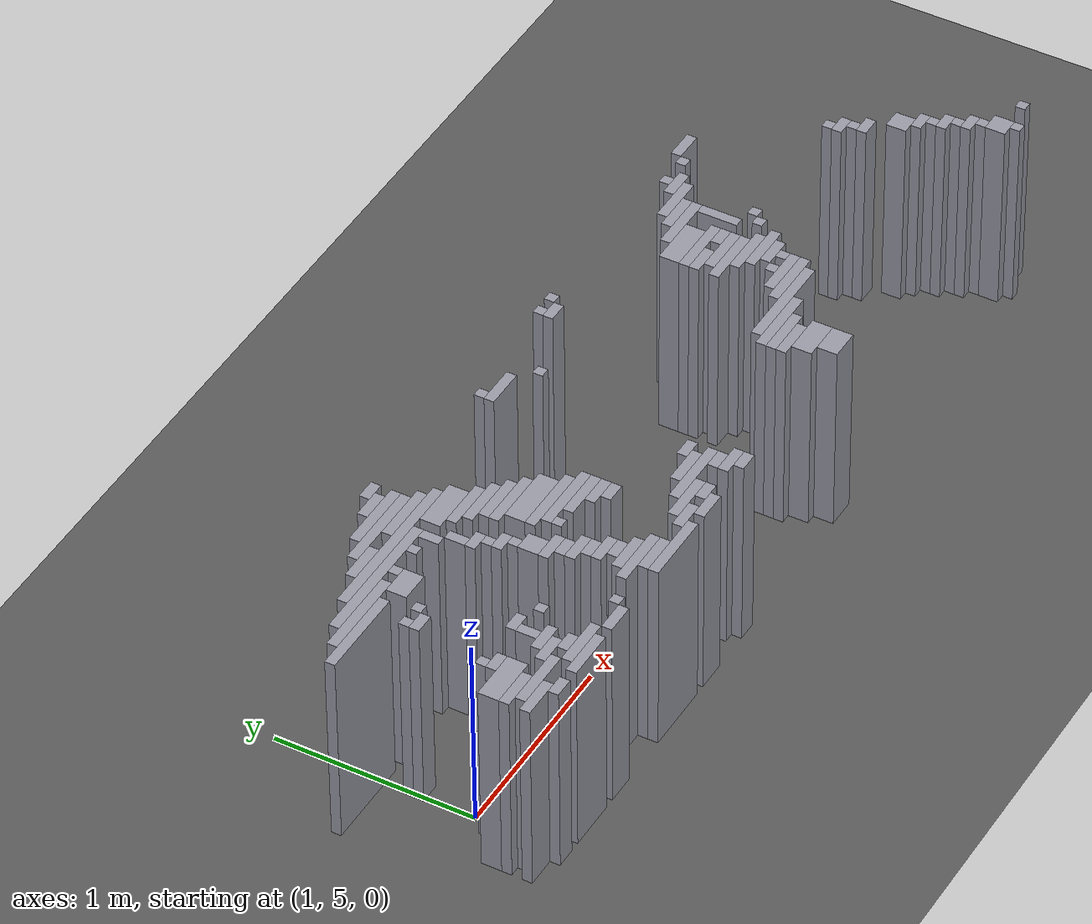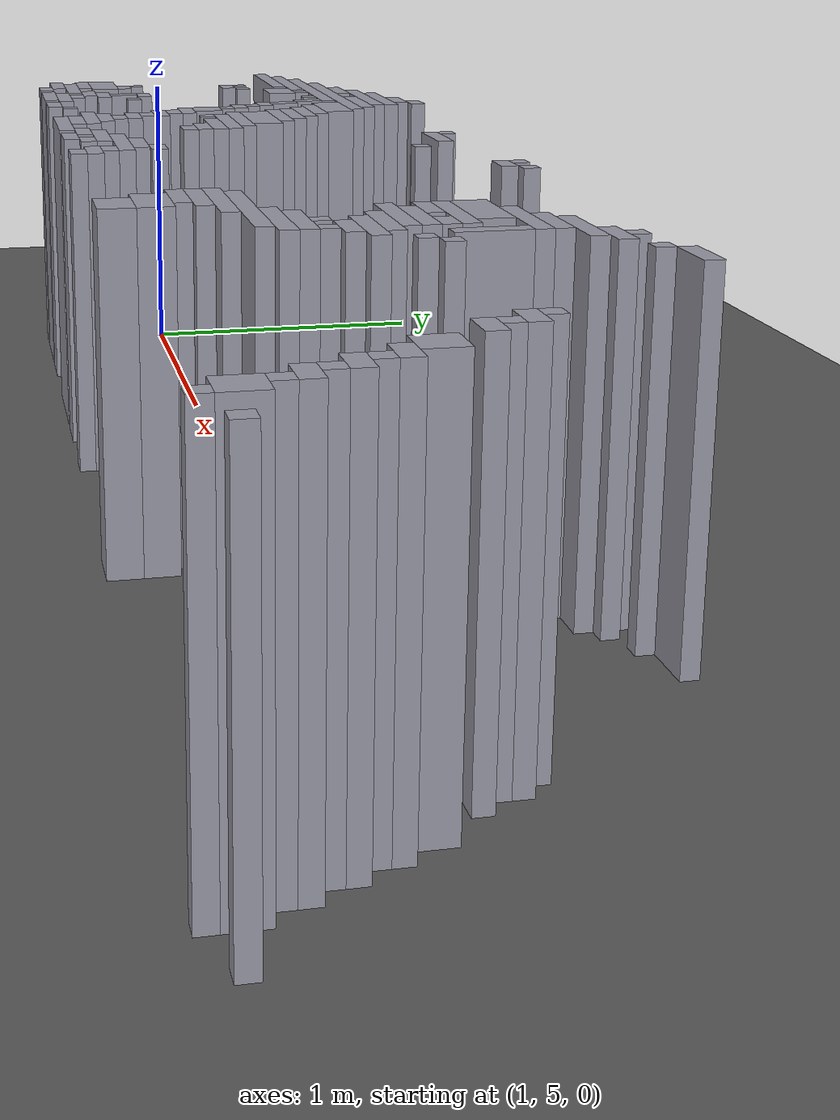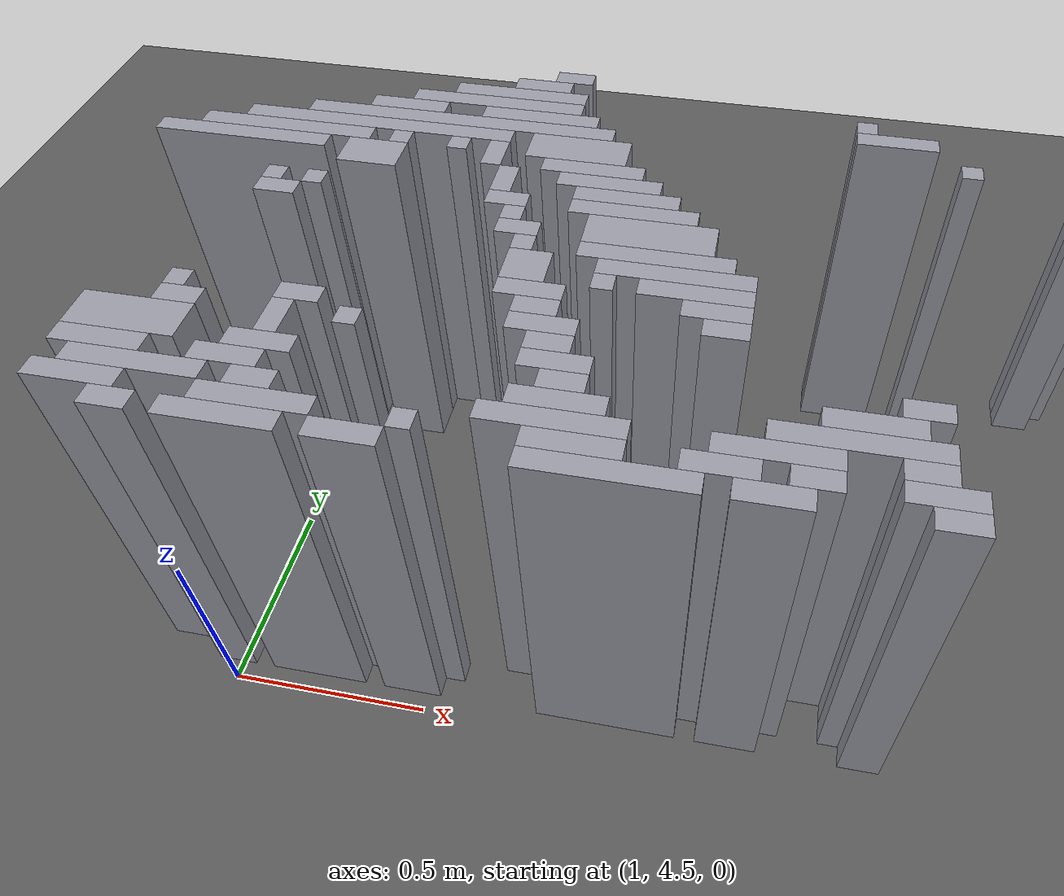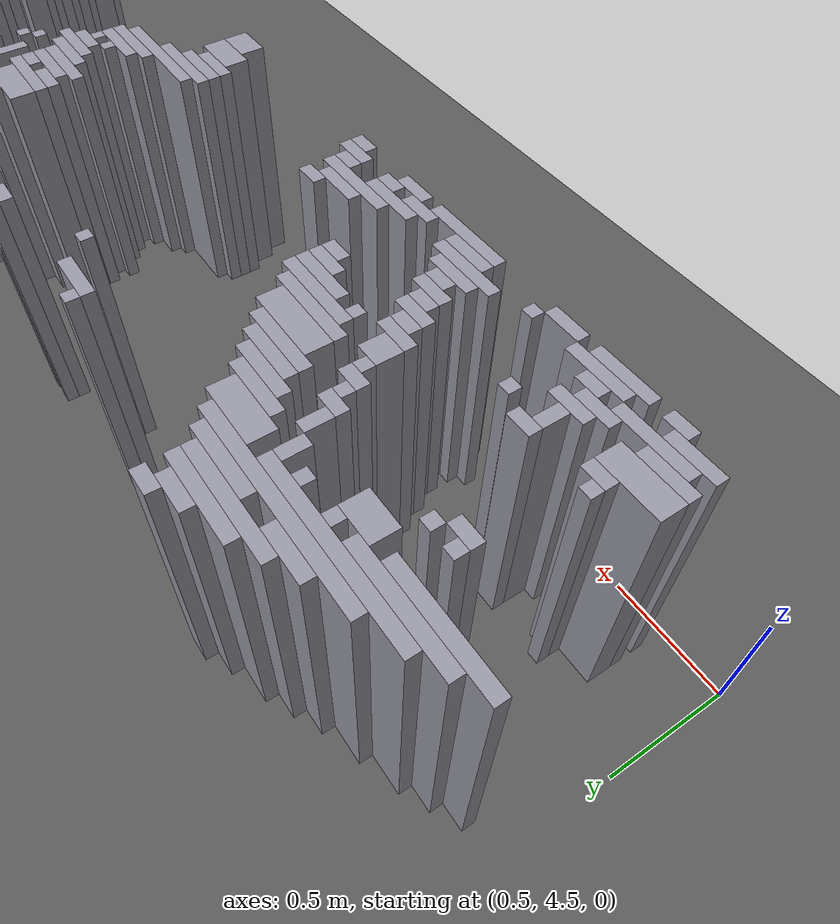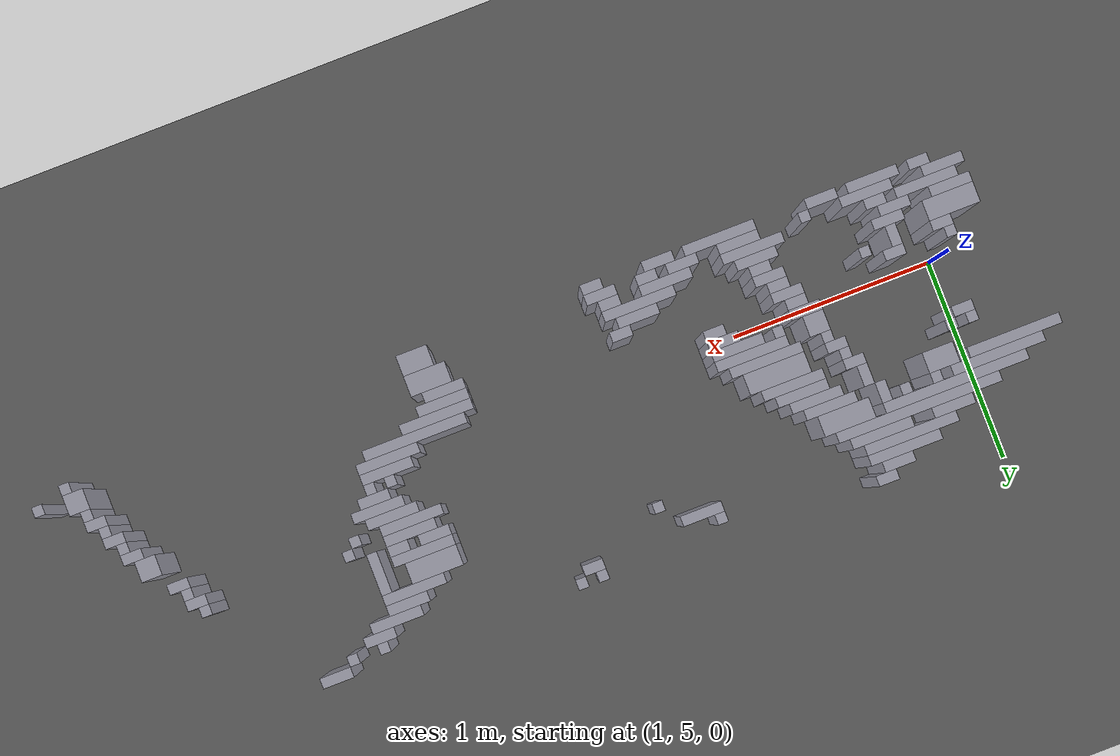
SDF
<sdf version="1.8">
 <world name="dimi">
  <model name="ground">
   <static>true</static>
   <link name="ground_link">
    <collision name="c"><geometry><plane><normal>0 0 1</normal><size>60 60</size></plane></geometry></collision>
    <visual name="v">
     <geometry><plane><normal>0 0 1</normal><size>60 60</size></plane></geometry>
     <material><ambient>0.3 0.3 0.3 1</ambient><diffuse>0.35 0.35 0.35 1</diffuse></material>
    </visual>
   </link>
  </model>
  <model name="walls">
   <static>true</static>
   <link name="wall_535">
    <pose>1.6330 5.8700 0.5000 0 0 0</pose>
    <collision name="c"><geometry><box><size>0.1000 0.0500 1.0000</size></box></geometry></collision>
    <visual name="v">
     <geometry><box><size>0.1000 0.0500 1.0000</size></box></geometry>
     <material><ambient>0.5 0.5 0.55 1</ambient><diffuse>0.6 0.6 0.65 1</diffuse></material>
    </visual>
   </link>
   <link name="wall_542">
    <pose>1.5580 5.8200 0.5000 0 0 0</pose>
    <collision name="c"><geometry><box><size>0.1500 0.0500 1.0000</size></box></geometry></collision>
    <visual name="v">
     <geometry><box><size>0.1500 0.0500 1.0000</size></box></geometry>
     <material><ambient>0.5 0.5 0.55 1</ambient><diffuse>0.6 0.6 0.65 1</diffuse></material>
    </visual>
   </link>
   <link name="wall_543">
    <pose>3.0080 5.8200 0.5000 0 0 0</pose>
    <collision name="c"><geometry><box><size>0.0500 0.0500 1.0000</size></box></geometry></collision>
    <visual name="v">
     <geometry><box><size>0.0500 0.0500 1.0000</size></box></geometry>
     <material><ambient>0.5 0.5 0.55 1</ambient><diffuse>0.6 0.6 0.65 1</diffuse></material>
    </visual>
   </link>
   <link name="wall_544">
    <pose>3.1080 5.8200 0.5000 0 0 0</pose>
    <collision name="c"><geometry><box><size>0.0500 0.0500 1.0000</size></box></geometry></collision>
    <visual name="v">
     <geometry><box><size>0.0500 0.0500 1.0000</size></box></geometry>
     <material><ambient>0.5 0.5 0.55 1</ambient><diffuse>0.6 0.6 0.65 1</diffuse></material>
    </visual>
   </link>
   <link name="wall_545">
    <pose>4.3080 5.8200 0.5000 0 0 0</pose>
    <collision name="c"><geometry><box><size>0.1500 0.0500 1.0000</size></box></geometry></collision>
    <visual name="v">
     <geometry><box><size>0.1500 0.0500 1.0000</size></box></geometry>
     <material><ambient>0.5 0.5 0.55 1</ambient><diffuse>0.6 0.6 0.65 1</diffuse></material>
    </visual>
   </link>
   <link name="wall_548">
    <pose>1.5080 5.7700 0.5000 0 0 0</pose>
    <collision name="c"><geometry><box><size>0.3500 0.0500 1.0000</size></box></geometry></collision>
    <visual name="v">
     <geometry><box><size>0.3500 0.0500 1.0000</size></box></geometry>
     <material><ambient>0.5 0.5 0.55 1</ambient><diffuse>0.6 0.6 0.65 1</diffuse></material>
    </visual>
   </link>
   <link name="wall_549">
    <pose>2.4080 5.7700 0.5000 0 0 0</pose>
    <collision name="c"><geometry><box><size>0.0500 0.0500 1.0000</size></box></geometry></collision>
    <visual name="v">
     <geometry><box><size>0.0500 0.0500 1.0000</size></box></geometry>
     <material><ambient>0.5 0.5 0.55 1</ambient><diffuse>0.6 0.6 0.65 1</diffuse></material>
    </visual>
   </link>
   <link name="wall_550">
    <pose>3.0330 5.7700 0.5000 0 0 0</pose>
    <collision name="c"><geometry><box><size>0.1000 0.0500 1.0000</size></box></geometry></collision>
    <visual name="v">
     <geometry><box><size>0.1000 0.0500 1.0000</size></box></geometry>
     <material><ambient>0.5 0.5 0.55 1</ambient><diffuse>0.6 0.6 0.65 1</diffuse></material>
    </visual>
   </link>
   <link name="wall_551">
    <pose>4.0580 5.7700 0.5000 0 0 0</pose>
    <collision name="c"><geometry><box><size>0.0500 0.0500 1.0000</size></box></geometry></collision>
    <visual name="v">
     <geometry><box><size>0.0500 0.0500 1.0000</size></box></geometry>
     <material><ambient>0.5 0.5 0.55 1</ambient><diffuse>0.6 0.6 0.65 1</diffuse></material>
    </visual>
   </link>
   <link name="wall_552">
    <pose>4.2080 5.7700 0.5000 0 0 0</pose>
    <collision name="c"><geometry><box><size>0.0500 0.0500 1.0000</size></box></geometry></collision>
    <visual name="v">
     <geometry><box><size>0.0500 0.0500 1.0000</size></box></geometry>
     <material><ambient>0.5 0.5 0.55 1</ambient><diffuse>0.6 0.6 0.65 1</diffuse></material>
    </visual>
   </link>
   <link name="wall_556">
    <pose>1.4580 5.7200 0.5000 0 0 0</pose>
    <collision name="c"><geometry><box><size>0.4500 0.0500 1.0000</size></box></geometry></collision>
    <visual name="v">
     <geometry><box><size>0.4500 0.0500 1.0000</size></box></geometry>
     <material><ambient>0.5 0.5 0.55 1</ambient><diffuse>0.6 0.6 0.65 1</diffuse></material>
    </visual>
   </link>
   <link name="wall_557">
    <pose>2.4830 5.7200 0.5000 0 0 0</pose>
    <collision name="c"><geometry><box><size>0.2000 0.0500 1.0000</size></box></geometry></collision>
    <visual name="v">
     <geometry><box><size>0.2000 0.0500 1.0000</size></box></geometry>
     <material><ambient>0.5 0.5 0.55 1</ambient><diffuse>0.6 0.6 0.65 1</diffuse></material>
    </visual>
   </link>
   <link name="wall_558">
    <pose>4.0580 5.7200 0.5000 0 0 0</pose>
    <collision name="c"><geometry><box><size>0.1500 0.0500 1.0000</size></box></geometry></collision>
    <visual name="v">
     <geometry><box><size>0.1500 0.0500 1.0000</size></box></geometry>
     <material><ambient>0.5 0.5 0.55 1</ambient><diffuse>0.6 0.6 0.65 1</diffuse></material>
    </visual>
   </link>
   <link name="wall_560">
    <pose>1.2330 5.6700 0.5000 0 0 0</pose>
    <collision name="c"><geometry><box><size>0.2000 0.0500 1.0000</size></box></geometry></collision>
    <visual name="v">
     <geometry><box><size>0.2000 0.0500 1.0000</size></box></geometry>
     <material><ambient>0.5 0.5 0.55 1</ambient><diffuse>0.6 0.6 0.65 1</diffuse></material>
    </visual>
   </link>
   <link name="wall_561">
    <pose>1.5830 5.6700 0.5000 0 0 0</pose>
    <collision name="c"><geometry><box><size>0.3000 0.0500 1.0000</size></box></geometry></collision>
    <visual name="v">
     <geometry><box><size>0.3000 0.0500 1.0000</size></box></geometry>
     <material><ambient>0.5 0.5 0.55 1</ambient><diffuse>0.6 0.6 0.65 1</diffuse></material>
    </visual>
   </link>
   <link name="wall_562">
    <pose>3.9580 5.6700 0.5000 0 0 0</pose>
    <collision name="c"><geometry><box><size>0.2500 0.0500 1.0000</size></box></geometry></collision>
    <visual name="v">
     <geometry><box><size>0.2500 0.0500 1.0000</size></box></geometry>
     <material><ambient>0.5 0.5 0.55 1</ambient><diffuse>0.6 0.6 0.65 1</diffuse></material>
    </visual>
   </link>
   <link name="wall_564">
    <pose>1.3830 5.6200 0.5000 0 0 0</pose>
    <collision name="c"><geometry><box><size>0.8000 0.0500 1.0000</size></box></geometry></collision>
    <visual name="v">
     <geometry><box><size>0.8000 0.0500 1.0000</size></box></geometry>
     <material><ambient>0.5 0.5 0.55 1</ambient><diffuse>0.6 0.6 0.65 1</diffuse></material>
    </visual>
   </link>
   <link name="wall_565">
    <pose>2.6580 5.6200 0.5000 0 0 0</pose>
    <collision name="c"><geometry><box><size>0.0500 0.0500 1.0000</size></box></geometry></collision>
    <visual name="v">
     <geometry><box><size>0.0500 0.0500 1.0000</size></box></geometry>
     <material><ambient>0.5 0.5 0.55 1</ambient><diffuse>0.6 0.6 0.65 1</diffuse></material>
    </visual>
   </link>
   <link name="wall_566">
    <pose>3.8830 5.6200 0.5000 0 0 0</pose>
    <collision name="c"><geometry><box><size>0.2000 0.0500 1.0000</size></box></geometry></collision>
    <visual name="v">
     <geometry><box><size>0.2000 0.0500 1.0000</size></box></geometry>
     <material><ambient>0.5 0.5 0.55 1</ambient><diffuse>0.6 0.6 0.65 1</diffuse></material>
    </visual>
   </link>
   <link name="wall_567">
    <pose>1.1830 5.5700 0.5000 0 0 0</pose>
    <collision name="c"><geometry><box><size>0.7000 0.0500 1.0000</size></box></geometry></collision>
    <visual name="v">
     <geometry><box><size>0.7000 0.0500 1.0000</size></box></geometry>
     <material><ambient>0.5 0.5 0.55 1</ambient><diffuse>0.6 0.6 0.65 1</diffuse></material>
    </visual>
   </link>
   <link name="wall_568">
    <pose>1.7080 5.5450 0.5000 0 0 0</pose>
    <collision name="c"><geometry><box><size>0.2500 0.1000 1.0000</size></box></geometry></collision>
    <visual name="v">
     <geometry><box><size>0.2500 0.1000 1.0000</size></box></geometry>
     <material><ambient>0.5 0.5 0.55 1</ambient><diffuse>0.6 0.6 0.65 1</diffuse></material>
    </visual>
   </link>
   <link name="wall_569">
    <pose>3.8330 5.5700 0.5000 0 0 0</pose>
    <collision name="c"><geometry><box><size>0.3000 0.0500 1.0000</size></box></geometry></collision>
    <visual name="v">
     <geometry><box><size>0.3000 0.0500 1.0000</size></box></geometry>
     <material><ambient>0.5 0.5 0.55 1</ambient><diffuse>0.6 0.6 0.65 1</diffuse></material>
    </visual>
   </link>
   <link name="wall_571">
    <pose>0.9580 5.5200 0.5000 0 0 0</pose>
    <collision name="c"><geometry><box><size>0.4500 0.0500 1.0000</size></box></geometry></collision>
    <visual name="v">
     <geometry><box><size>0.4500 0.0500 1.0000</size></box></geometry>
     <material><ambient>0.5 0.5 0.55 1</ambient><diffuse>0.6 0.6 0.65 1</diffuse></material>
    </visual>
   </link>
   <link name="wall_572">
    <pose>1.2580 5.5200 0.5000 0 0 0</pose>
    <collision name="c"><geometry><box><size>0.0500 0.0500 1.0000</size></box></geometry></collision>
    <visual name="v">
     <geometry><box><size>0.0500 0.0500 1.0000</size></box></geometry>
     <material><ambient>0.5 0.5 0.55 1</ambient><diffuse>0.6 0.6 0.65 1</diffuse></material>
    </visual>
   </link>
   <link name="wall_573">
    <pose>1.4080 5.5200 0.5000 0 0 0</pose>
    <collision name="c"><geometry><box><size>0.0500 0.0500 1.0000</size></box></geometry></collision>
    <visual name="v">
     <geometry><box><size>0.0500 0.0500 1.0000</size></box></geometry>
     <material><ambient>0.5 0.5 0.55 1</ambient><diffuse>0.6 0.6 0.65 1</diffuse></material>
    </visual>
   </link>
   <link name="wall_574">
    <pose>1.5080 5.4950 0.5000 0 0 0</pose>
    <collision name="c"><geometry><box><size>0.0500 0.1000 1.0000</size></box></geometry></collision>
    <visual name="v">
     <geometry><box><size>0.0500 0.1000 1.0000</size></box></geometry>
     <material><ambient>0.5 0.5 0.55 1</ambient><diffuse>0.6 0.6 0.65 1</diffuse></material>
    </visual>
   </link>
   <link name="wall_575">
    <pose>3.7080 5.4950 0.5000 0 0 0</pose>
    <collision name="c"><geometry><box><size>0.2500 0.1000 1.0000</size></box></geometry></collision>
    <visual name="v">
     <geometry><box><size>0.2500 0.1000 1.0000</size></box></geometry>
     <material><ambient>0.5 0.5 0.55 1</ambient><diffuse>0.6 0.6 0.65 1</diffuse></material>
    </visual>
   </link>
   <link name="wall_576">
    <pose>3.9580 5.4450 0.5000 0 0 0</pose>
    <collision name="c"><geometry><box><size>0.0500 0.2000 1.0000</size></box></geometry></collision>
    <visual name="v">
     <geometry><box><size>0.0500 0.2000 1.0000</size></box></geometry>
     <material><ambient>0.5 0.5 0.55 1</ambient><diffuse>0.6 0.6 0.65 1</diffuse></material>
    </visual>
   </link>
   <link name="wall_580">
    <pose>0.8580 5.4700 0.5000 0 0 0</pose>
    <collision name="c"><geometry><box><size>0.4500 0.0500 1.0000</size></box></geometry></collision>
    <visual name="v">
     <geometry><box><size>0.4500 0.0500 1.0000</size></box></geometry>
     <material><ambient>0.5 0.5 0.55 1</ambient><diffuse>0.6 0.6 0.65 1</diffuse></material>
    </visual>
   </link>
   <link name="wall_581">
    <pose>1.2080 5.4450 0.5000 0 0 0</pose>
    <collision name="c"><geometry><box><size>0.1500 0.1000 1.0000</size></box></geometry></collision>
    <visual name="v">
     <geometry><box><size>0.1500 0.1000 1.0000</size></box></geometry>
     <material><ambient>0.5 0.5 0.55 1</ambient><diffuse>0.6 0.6 0.65 1</diffuse></material>
    </visual>
   </link>
   <link name="wall_582">
    <pose>1.7580 5.4700 0.5000 0 0 0</pose>
    <collision name="c"><geometry><box><size>0.2500 0.0500 1.0000</size></box></geometry></collision>
    <visual name="v">
     <geometry><box><size>0.2500 0.0500 1.0000</size></box></geometry>
     <material><ambient>0.5 0.5 0.55 1</ambient><diffuse>0.6 0.6 0.65 1</diffuse></material>
    </visual>
   </link>
   <link name="wall_587">
    <pose>1.5580 5.3950 0.5000 0 0 0</pose>
    <collision name="c"><geometry><box><size>0.0500 0.1000 1.0000</size></box></geometry></collision>
    <visual name="v">
     <geometry><box><size>0.0500 0.1000 1.0000</size></box></geometry>
     <material><ambient>0.5 0.5 0.55 1</ambient><diffuse>0.6 0.6 0.65 1</diffuse></material>
    </visual>
   </link>
   <link name="wall_588">
    <pose>1.8080 5.4200 0.5000 0 0 0</pose>
    <collision name="c"><geometry><box><size>0.2500 0.0500 1.0000</size></box></geometry></collision>
    <visual name="v">
     <geometry><box><size>0.2500 0.0500 1.0000</size></box></geometry>
     <material><ambient>0.5 0.5 0.55 1</ambient><diffuse>0.6 0.6 0.65 1</diffuse></material>
    </visual>
   </link>
   <link name="wall_589">
    <pose>3.7330 5.4200 0.5000 0 0 0</pose>
    <collision name="c"><geometry><box><size>0.3000 0.0500 1.0000</size></box></geometry></collision>
    <visual name="v">
     <geometry><box><size>0.3000 0.0500 1.0000</size></box></geometry>
     <material><ambient>0.5 0.5 0.55 1</ambient><diffuse>0.6 0.6 0.65 1</diffuse></material>
    </visual>
   </link>
   <link name="wall_593">
    <pose>1.8580 5.3700 0.5000 0 0 0</pose>
    <collision name="c"><geometry><box><size>0.2500 0.0500 1.0000</size></box></geometry></collision>
    <visual name="v">
     <geometry><box><size>0.2500 0.0500 1.0000</size></box></geometry>
     <material><ambient>0.5 0.5 0.55 1</ambient><diffuse>0.6 0.6 0.65 1</diffuse></material>
    </visual>
   </link>
   <link name="wall_594">
    <pose>3.6580 5.3700 0.5000 0 0 0</pose>
    <collision name="c"><geometry><box><size>0.1500 0.0500 1.0000</size></box></geometry></collision>
    <visual name="v">
     <geometry><box><size>0.1500 0.0500 1.0000</size></box></geometry>
     <material><ambient>0.5 0.5 0.55 1</ambient><diffuse>0.6 0.6 0.65 1</diffuse></material>
    </visual>
   </link>
   <link name="wall_595">
    <pose>3.8330 5.3700 0.5000 0 0 0</pose>
    <collision name="c"><geometry><box><size>0.1000 0.0500 1.0000</size></box></geometry></collision>
    <visual name="v">
     <geometry><box><size>0.1000 0.0500 1.0000</size></box></geometry>
     <material><ambient>0.5 0.5 0.55 1</ambient><diffuse>0.6 0.6 0.65 1</diffuse></material>
    </visual>
   </link>
   <link name="wall_601">
    <pose>1.0080 5.3200 0.5000 0 0 0</pose>
    <collision name="c"><geometry><box><size>0.0500 0.0500 1.0000</size></box></geometry></collision>
    <visual name="v">
     <geometry><box><size>0.0500 0.0500 1.0000</size></box></geometry>
     <material><ambient>0.5 0.5 0.55 1</ambient><diffuse>0.6 0.6 0.65 1</diffuse></material>
    </visual>
   </link>
   <link name="wall_602">
    <pose>1.1080 5.3200 0.5000 0 0 0</pose>
    <collision name="c"><geometry><box><size>0.0500 0.0500 1.0000</size></box></geometry></collision>
    <visual name="v">
     <geometry><box><size>0.0500 0.0500 1.0000</size></box></geometry>
     <material><ambient>0.5 0.5 0.55 1</ambient><diffuse>0.6 0.6 0.65 1</diffuse></material>
    </visual>
   </link>
   <link name="wall_603">
    <pose>1.5830 5.3200 0.5000 0 0 0</pose>
    <collision name="c"><geometry><box><size>0.1000 0.0500 1.0000</size></box></geometry></collision>
    <visual name="v">
     <geometry><box><size>0.1000 0.0500 1.0000</size></box></geometry>
     <material><ambient>0.5 0.5 0.55 1</ambient><diffuse>0.6 0.6 0.65 1</diffuse></material>
    </visual>
   </link>
   <link name="wall_604">
    <pose>1.8830 5.3200 0.5000 0 0 0</pose>
    <collision name="c"><geometry><box><size>0.3000 0.0500 1.0000</size></box></geometry></collision>
    <visual name="v">
     <geometry><box><size>0.3000 0.0500 1.0000</size></box></geometry>
     <material><ambient>0.5 0.5 0.55 1</ambient><diffuse>0.6 0.6 0.65 1</diffuse></material>
    </visual>
   </link>
   <link name="wall_605">
    <pose>3.7580 5.3200 0.5000 0 0 0</pose>
    <collision name="c"><geometry><box><size>0.2500 0.0500 1.0000</size></box></geometry></collision>
    <visual name="v">
     <geometry><box><size>0.2500 0.0500 1.0000</size></box></geometry>
     <material><ambient>0.5 0.5 0.55 1</ambient><diffuse>0.6 0.6 0.65 1</diffuse></material>
    </visual>
   </link>
   <link name="wall_606">
    <pose>4.0580 5.3200 0.5000 0 0 0</pose>
    <collision name="c"><geometry><box><size>0.0500 0.0500 1.0000</size></box></geometry></collision>
    <visual name="v">
     <geometry><box><size>0.0500 0.0500 1.0000</size></box></geometry>
     <material><ambient>0.5 0.5 0.55 1</ambient><diffuse>0.6 0.6 0.65 1</diffuse></material>
    </visual>
   </link>
   <link name="wall_607">
    <pose>4.7580 5.3200 0.5000 0 0 0</pose>
    <collision name="c"><geometry><box><size>0.0500 0.0500 1.0000</size></box></geometry></collision>
    <visual name="v">
     <geometry><box><size>0.0500 0.0500 1.0000</size></box></geometry>
     <material><ambient>0.5 0.5 0.55 1</ambient><diffuse>0.6 0.6 0.65 1</diffuse></material>
    </visual>
   </link>
   <link name="wall_612">
    <pose>1.0330 5.2700 0.5000 0 0 0</pose>
    <collision name="c"><geometry><box><size>0.1000 0.0500 1.0000</size></box></geometry></collision>
    <visual name="v">
     <geometry><box><size>0.1000 0.0500 1.0000</size></box></geometry>
     <material><ambient>0.5 0.5 0.55 1</ambient><diffuse>0.6 0.6 0.65 1</diffuse></material>
    </visual>
   </link>
   <link name="wall_613">
    <pose>1.6080 5.2700 0.5000 0 0 0</pose>
    <collision name="c"><geometry><box><size>0.0500 0.0500 1.0000</size></box></geometry></collision>
    <visual name="v">
     <geometry><box><size>0.0500 0.0500 1.0000</size></box></geometry>
     <material><ambient>0.5 0.5 0.55 1</ambient><diffuse>0.6 0.6 0.65 1</diffuse></material>
    </visual>
   </link>
   <link name="wall_614">
    <pose>1.9330 5.2450 0.5000 0 0 0</pose>
    <collision name="c"><geometry><box><size>0.3000 0.1000 1.0000</size></box></geometry></collision>
    <visual name="v">
     <geometry><box><size>0.3000 0.1000 1.0000</size></box></geometry>
     <material><ambient>0.5 0.5 0.55 1</ambient><diffuse>0.6 0.6 0.65 1</diffuse></material>
    </visual>
   </link>
   <link name="wall_615">
    <pose>3.7330 5.2700 0.5000 0 0 0</pose>
    <collision name="c"><geometry><box><size>0.3000 0.0500 1.0000</size></box></geometry></collision>
    <visual name="v">
     <geometry><box><size>0.3000 0.0500 1.0000</size></box></geometry>
     <material><ambient>0.5 0.5 0.55 1</ambient><diffuse>0.6 0.6 0.65 1</diffuse></material>
    </visual>
   </link>
   <link name="wall_616">
    <pose>4.0080 5.2700 0.5000 0 0 0</pose>
    <collision name="c"><geometry><box><size>0.0500 0.0500 1.0000</size></box></geometry></collision>
    <visual name="v">
     <geometry><box><size>0.0500 0.0500 1.0000</size></box></geometry>
     <material><ambient>0.5 0.5 0.55 1</ambient><diffuse>0.6 0.6 0.65 1</diffuse></material>
    </visual>
   </link>
   <link name="wall_617">
    <pose>4.7830 5.2700 0.5000 0 0 0</pose>
    <collision name="c"><geometry><box><size>0.1000 0.0500 1.0000</size></box></geometry></collision>
    <visual name="v">
     <geometry><box><size>0.1000 0.0500 1.0000</size></box></geometry>
     <material><ambient>0.5 0.5 0.55 1</ambient><diffuse>0.6 0.6 0.65 1</diffuse></material>
    </visual>
   </link>
   <link name="wall_623">
    <pose>1.6330 5.2200 0.5000 0 0 0</pose>
    <collision name="c"><geometry><box><size>0.1000 0.0500 1.0000</size></box></geometry></collision>
    <visual name="v">
     <geometry><box><size>0.1000 0.0500 1.0000</size></box></geometry>
     <material><ambient>0.5 0.5 0.55 1</ambient><diffuse>0.6 0.6 0.65 1</diffuse></material>
    </visual>
   </link>
   <link name="wall_624">
    <pose>3.8080 5.2200 0.5000 0 0 0</pose>
    <collision name="c"><geometry><box><size>0.2500 0.0500 1.0000</size></box></geometry></collision>
    <visual name="v">
     <geometry><box><size>0.2500 0.0500 1.0000</size></box></geometry>
     <material><ambient>0.5 0.5 0.55 1</ambient><diffuse>0.6 0.6 0.65 1</diffuse></material>
    </visual>
   </link>
   <link name="wall_625">
    <pose>4.8080 5.2200 0.5000 0 0 0</pose>
    <collision name="c"><geometry><box><size>0.0500 0.0500 1.0000</size></box></geometry></collision>
    <visual name="v">
     <geometry><box><size>0.0500 0.0500 1.0000</size></box></geometry>
     <material><ambient>0.5 0.5 0.55 1</ambient><diffuse>0.6 0.6 0.65 1</diffuse></material>
    </visual>
   </link>
   <link name="wall_630">
    <pose>1.6580 5.1700 0.5000 0 0 0</pose>
    <collision name="c"><geometry><box><size>0.0500 0.0500 1.0000</size></box></geometry></collision>
    <visual name="v">
     <geometry><box><size>0.0500 0.0500 1.0000</size></box></geometry>
     <material><ambient>0.5 0.5 0.55 1</ambient><diffuse>0.6 0.6 0.65 1</diffuse></material>
    </visual>
   </link>
   <link name="wall_631">
    <pose>1.9580 5.1700 0.5000 0 0 0</pose>
    <collision name="c"><geometry><box><size>0.3500 0.0500 1.0000</size></box></geometry></collision>
    <visual name="v">
     <geometry><box><size>0.3500 0.0500 1.0000</size></box></geometry>
     <material><ambient>0.5 0.5 0.55 1</ambient><diffuse>0.6 0.6 0.65 1</diffuse></material>
    </visual>
   </link>
   <link name="wall_632">
    <pose>3.8580 5.1700 0.5000 0 0 0</pose>
    <collision name="c"><geometry><box><size>0.2500 0.0500 1.0000</size></box></geometry></collision>
    <visual name="v">
     <geometry><box><size>0.2500 0.0500 1.0000</size></box></geometry>
     <material><ambient>0.5 0.5 0.55 1</ambient><diffuse>0.6 0.6 0.65 1</diffuse></material>
    </visual>
   </link>
   <link name="wall_633">
    <pose>4.8330 5.1700 0.5000 0 0 0</pose>
    <collision name="c"><geometry><box><size>0.1000 0.0500 1.0000</size></box></geometry></collision>
    <visual name="v">
     <geometry><box><size>0.1000 0.0500 1.0000</size></box></geometry>
     <material><ambient>0.5 0.5 0.55 1</ambient><diffuse>0.6 0.6 0.65 1</diffuse></material>
    </visual>
   </link>
   <link name="wall_638">
    <pose>1.6830 5.0950 0.5000 0 0 0</pose>
    <collision name="c"><geometry><box><size>0.1000 0.1000 1.0000</size></box></geometry></collision>
    <visual name="v">
     <geometry><box><size>0.1000 0.1000 1.0000</size></box></geometry>
     <material><ambient>0.5 0.5 0.55 1</ambient><diffuse>0.6 0.6 0.65 1</diffuse></material>
    </visual>
   </link>
   <link name="wall_639">
    <pose>2.0080 5.1200 0.5000 0 0 0</pose>
    <collision name="c"><geometry><box><size>0.3500 0.0500 1.0000</size></box></geometry></collision>
    <visual name="v">
     <geometry><box><size>0.3500 0.0500 1.0000</size></box></geometry>
     <material><ambient>0.5 0.5 0.55 1</ambient><diffuse>0.6 0.6 0.65 1</diffuse></material>
    </visual>
   </link>
   <link name="wall_640">
    <pose>3.8580 5.1200 0.5000 0 0 0</pose>
    <collision name="c"><geometry><box><size>0.1500 0.0500 1.0000</size></box></geometry></collision>
    <visual name="v">
     <geometry><box><size>0.1500 0.0500 1.0000</size></box></geometry>
     <material><ambient>0.5 0.5 0.55 1</ambient><diffuse>0.6 0.6 0.65 1</diffuse></material>
    </visual>
   </link>
   <link name="wall_642">
    <pose>1.8580 5.0700 0.5000 0 0 0</pose>
    <collision name="c"><geometry><box><size>0.0500 0.0500 1.0000</size></box></geometry></collision>
    <visual name="v">
     <geometry><box><size>0.0500 0.0500 1.0000</size></box></geometry>
     <material><ambient>0.5 0.5 0.55 1</ambient><diffuse>0.6 0.6 0.65 1</diffuse></material>
    </visual>
   </link>
   <link name="wall_643">
    <pose>2.0580 5.0700 0.5000 0 0 0</pose>
    <collision name="c"><geometry><box><size>0.2500 0.0500 1.0000</size></box></geometry></collision>
    <visual name="v">
     <geometry><box><size>0.2500 0.0500 1.0000</size></box></geometry>
     <material><ambient>0.5 0.5 0.55 1</ambient><diffuse>0.6 0.6 0.65 1</diffuse></material>
    </visual>
   </link>
   <link name="wall_644">
    <pose>3.7580 5.0700 0.5000 0 0 0</pose>
    <collision name="c"><geometry><box><size>0.0500 0.0500 1.0000</size></box></geometry></collision>
    <visual name="v">
     <geometry><box><size>0.0500 0.0500 1.0000</size></box></geometry>
     <material><ambient>0.5 0.5 0.55 1</ambient><diffuse>0.6 0.6 0.65 1</diffuse></material>
    </visual>
   </link>
   <link name="wall_645">
    <pose>3.8580 5.0700 0.5000 0 0 0</pose>
    <collision name="c"><geometry><box><size>0.0500 0.0500 1.0000</size></box></geometry></collision>
    <visual name="v">
     <geometry><box><size>0.0500 0.0500 1.0000</size></box></geometry>
     <material><ambient>0.5 0.5 0.55 1</ambient><diffuse>0.6 0.6 0.65 1</diffuse></material>
    </visual>
   </link>
   <link name="wall_646">
    <pose>4.9330 5.0450 0.5000 0 0 0</pose>
    <collision name="c"><geometry><box><size>0.1000 0.1000 1.0000</size></box></geometry></collision>
    <visual name="v">
     <geometry><box><size>0.1000 0.1000 1.0000</size></box></geometry>
     <material><ambient>0.5 0.5 0.55 1</ambient><diffuse>0.6 0.6 0.65 1</diffuse></material>
    </visual>
   </link>
   <link name="wall_651">
    <pose>1.7080 5.0200 0.5000 0 0 0</pose>
    <collision name="c"><geometry><box><size>0.1500 0.0500 1.0000</size></box></geometry></collision>
    <visual name="v">
     <geometry><box><size>0.1500 0.0500 1.0000</size></box></geometry>
     <material><ambient>0.5 0.5 0.55 1</ambient><diffuse>0.6 0.6 0.65 1</diffuse></material>
    </visual>
   </link>
   <link name="wall_652">
    <pose>2.1080 5.0200 0.5000 0 0 0</pose>
    <collision name="c"><geometry><box><size>0.1500 0.0500 1.0000</size></box></geometry></collision>
    <visual name="v">
     <geometry><box><size>0.1500 0.0500 1.0000</size></box></geometry>
     <material><ambient>0.5 0.5 0.55 1</ambient><diffuse>0.6 0.6 0.65 1</diffuse></material>
    </visual>
   </link>
   <link name="wall_653">
    <pose>3.7580 5.0200 0.5000 0 0 0</pose>
    <collision name="c"><geometry><box><size>0.2500 0.0500 1.0000</size></box></geometry></collision>
    <visual name="v">
     <geometry><box><size>0.2500 0.0500 1.0000</size></box></geometry>
     <material><ambient>0.5 0.5 0.55 1</ambient><diffuse>0.6 0.6 0.65 1</diffuse></material>
    </visual>
   </link>
   <link name="wall_656">
    <pose>1.7330 4.9700 0.5000 0 0 0</pose>
    <collision name="c"><geometry><box><size>0.1000 0.0500 1.0000</size></box></geometry></collision>
    <visual name="v">
     <geometry><box><size>0.1000 0.0500 1.0000</size></box></geometry>
     <material><ambient>0.5 0.5 0.55 1</ambient><diffuse>0.6 0.6 0.65 1</diffuse></material>
    </visual>
   </link>
   <link name="wall_657">
    <pose>2.1330 4.9700 0.5000 0 0 0</pose>
    <collision name="c"><geometry><box><size>0.1000 0.0500 1.0000</size></box></geometry></collision>
    <visual name="v">
     <geometry><box><size>0.1000 0.0500 1.0000</size></box></geometry>
     <material><ambient>0.5 0.5 0.55 1</ambient><diffuse>0.6 0.6 0.65 1</diffuse></material>
    </visual>
   </link>
   <link name="wall_658">
    <pose>3.7330 4.9700 0.5000 0 0 0</pose>
    <collision name="c"><geometry><box><size>0.3000 0.0500 1.0000</size></box></geometry></collision>
    <visual name="v">
     <geometry><box><size>0.3000 0.0500 1.0000</size></box></geometry>
     <material><ambient>0.5 0.5 0.55 1</ambient><diffuse>0.6 0.6 0.65 1</diffuse></material>
    </visual>
   </link>
   <link name="wall_659">
    <pose>4.9830 4.9700 0.5000 0 0 0</pose>
    <collision name="c"><geometry><box><size>0.1000 0.0500 1.0000</size></box></geometry></collision>
    <visual name="v">
     <geometry><box><size>0.1000 0.0500 1.0000</size></box></geometry>
     <material><ambient>0.5 0.5 0.55 1</ambient><diffuse>0.6 0.6 0.65 1</diffuse></material>
    </visual>
   </link>
   <link name="wall_663">
    <pose>0.9580 4.9200 0.5000 0 0 0</pose>
    <collision name="c"><geometry><box><size>0.0500 0.0500 1.0000</size></box></geometry></collision>
    <visual name="v">
     <geometry><box><size>0.0500 0.0500 1.0000</size></box></geometry>
     <material><ambient>0.5 0.5 0.55 1</ambient><diffuse>0.6 0.6 0.65 1</diffuse></material>
    </visual>
   </link>
   <link name="wall_664">
    <pose>1.2330 4.9200 0.5000 0 0 0</pose>
    <collision name="c"><geometry><box><size>0.1000 0.0500 1.0000</size></box></geometry></collision>
    <visual name="v">
     <geometry><box><size>0.1000 0.0500 1.0000</size></box></geometry>
     <material><ambient>0.5 0.5 0.55 1</ambient><diffuse>0.6 0.6 0.65 1</diffuse></material>
    </visual>
   </link>
   <link name="wall_665">
    <pose>1.7580 4.9200 0.5000 0 0 0</pose>
    <collision name="c"><geometry><box><size>0.1500 0.0500 1.0000</size></box></geometry></collision>
    <visual name="v">
     <geometry><box><size>0.1500 0.0500 1.0000</size></box></geometry>
     <material><ambient>0.5 0.5 0.55 1</ambient><diffuse>0.6 0.6 0.65 1</diffuse></material>
    </visual>
   </link>
   <link name="wall_666">
    <pose>3.5830 4.9200 0.5000 0 0 0</pose>
    <collision name="c"><geometry><box><size>0.5000 0.0500 1.0000</size></box></geometry></collision>
    <visual name="v">
     <geometry><box><size>0.5000 0.0500 1.0000</size></box></geometry>
     <material><ambient>0.5 0.5 0.55 1</ambient><diffuse>0.6 0.6 0.65 1</diffuse></material>
    </visual>
   </link>
   <link name="wall_667">
    <pose>5.0080 4.9200 0.5000 0 0 0</pose>
    <collision name="c"><geometry><box><size>0.0500 0.0500 1.0000</size></box></geometry></collision>
    <visual name="v">
     <geometry><box><size>0.0500 0.0500 1.0000</size></box></geometry>
     <material><ambient>0.5 0.5 0.55 1</ambient><diffuse>0.6 0.6 0.65 1</diffuse></material>
    </visual>
   </link>
   <link name="wall_671">
    <pose>0.9830 4.8700 0.5000 0 0 0</pose>
    <collision name="c"><geometry><box><size>0.1000 0.0500 1.0000</size></box></geometry></collision>
    <visual name="v">
     <geometry><box><size>0.1000 0.0500 1.0000</size></box></geometry>
     <material><ambient>0.5 0.5 0.55 1</ambient><diffuse>0.6 0.6 0.65 1</diffuse></material>
    </visual>
   </link>
   <link name="wall_672">
    <pose>1.2080 4.8450 0.5000 0 0 0</pose>
    <collision name="c"><geometry><box><size>0.0500 0.1000 1.0000</size></box></geometry></collision>
    <visual name="v">
     <geometry><box><size>0.0500 0.1000 1.0000</size></box></geometry>
     <material><ambient>0.5 0.5 0.55 1</ambient><diffuse>0.6 0.6 0.65 1</diffuse></material>
    </visual>
   </link>
   <link name="wall_673">
    <pose>1.3580 4.8700 0.5000 0 0 0</pose>
    <collision name="c"><geometry><box><size>0.0500 0.0500 1.0000</size></box></geometry></collision>
    <visual name="v">
     <geometry><box><size>0.0500 0.0500 1.0000</size></box></geometry>
     <material><ambient>0.5 0.5 0.55 1</ambient><diffuse>0.6 0.6 0.65 1</diffuse></material>
    </visual>
   </link>
   <link name="wall_674">
    <pose>1.7830 4.8700 0.5000 0 0 0</pose>
    <collision name="c"><geometry><box><size>0.1000 0.0500 1.0000</size></box></geometry></collision>
    <visual name="v">
     <geometry><box><size>0.1000 0.0500 1.0000</size></box></geometry>
     <material><ambient>0.5 0.5 0.55 1</ambient><diffuse>0.6 0.6 0.65 1</diffuse></material>
    </visual>
   </link>
   <link name="wall_675">
    <pose>3.4580 4.8700 0.5000 0 0 0</pose>
    <collision name="c"><geometry><box><size>0.3500 0.0500 1.0000</size></box></geometry></collision>
    <visual name="v">
     <geometry><box><size>0.3500 0.0500 1.0000</size></box></geometry>
     <material><ambient>0.5 0.5 0.55 1</ambient><diffuse>0.6 0.6 0.65 1</diffuse></material>
    </visual>
   </link>
   <link name="wall_676">
    <pose>5.0330 4.8700 0.5000 0 0 0</pose>
    <collision name="c"><geometry><box><size>0.1000 0.0500 1.0000</size></box></geometry></collision>
    <visual name="v">
     <geometry><box><size>0.1000 0.0500 1.0000</size></box></geometry>
     <material><ambient>0.5 0.5 0.55 1</ambient><diffuse>0.6 0.6 0.65 1</diffuse></material>
    </visual>
   </link>
   <link name="wall_679">
    <pose>0.9080 4.7950 0.5000 0 0 0</pose>
    <collision name="c"><geometry><box><size>0.2500 0.1000 1.0000</size></box></geometry></collision>
    <visual name="v">
     <geometry><box><size>0.2500 0.1000 1.0000</size></box></geometry>
     <material><ambient>0.5 0.5 0.55 1</ambient><diffuse>0.6 0.6 0.65 1</diffuse></material>
    </visual>
   </link>
   <link name="wall_680">
    <pose>1.8080 4.8200 0.5000 0 0 0</pose>
    <collision name="c"><geometry><box><size>0.1500 0.0500 1.0000</size></box></geometry></collision>
    <visual name="v">
     <geometry><box><size>0.1500 0.0500 1.0000</size></box></geometry>
     <material><ambient>0.5 0.5 0.55 1</ambient><diffuse>0.6 0.6 0.65 1</diffuse></material>
    </visual>
   </link>
   <link name="wall_681">
    <pose>2.5330 4.8200 0.5000 0 0 0</pose>
    <collision name="c"><geometry><box><size>0.1000 0.0500 1.0000</size></box></geometry></collision>
    <visual name="v">
     <geometry><box><size>0.1000 0.0500 1.0000</size></box></geometry>
     <material><ambient>0.5 0.5 0.55 1</ambient><diffuse>0.6 0.6 0.65 1</diffuse></material>
    </visual>
   </link>
   <link name="wall_682">
    <pose>3.4080 4.8200 0.5000 0 0 0</pose>
    <collision name="c"><geometry><box><size>0.2500 0.0500 1.0000</size></box></geometry></collision>
    <visual name="v">
     <geometry><box><size>0.2500 0.0500 1.0000</size></box></geometry>
     <material><ambient>0.5 0.5 0.55 1</ambient><diffuse>0.6 0.6 0.65 1</diffuse></material>
    </visual>
   </link>
   <link name="wall_683">
    <pose>5.0580 4.8200 0.5000 0 0 0</pose>
    <collision name="c"><geometry><box><size>0.0500 0.0500 1.0000</size></box></geometry></collision>
    <visual name="v">
     <geometry><box><size>0.0500 0.0500 1.0000</size></box></geometry>
     <material><ambient>0.5 0.5 0.55 1</ambient><diffuse>0.6 0.6 0.65 1</diffuse></material>
    </visual>
   </link>
   <link name="wall_686">
    <pose>1.2080 4.7700 0.5000 0 0 0</pose>
    <collision name="c"><geometry><box><size>0.1500 0.0500 1.0000</size></box></geometry></collision>
    <visual name="v">
     <geometry><box><size>0.1500 0.0500 1.0000</size></box></geometry>
     <material><ambient>0.5 0.5 0.55 1</ambient><diffuse>0.6 0.6 0.65 1</diffuse></material>
    </visual>
   </link>
   <link name="wall_687">
    <pose>1.8330 4.7700 0.5000 0 0 0</pose>
    <collision name="c"><geometry><box><size>0.1000 0.0500 1.0000</size></box></geometry></collision>
    <visual name="v">
     <geometry><box><size>0.1000 0.0500 1.0000</size></box></geometry>
     <material><ambient>0.5 0.5 0.55 1</ambient><diffuse>0.6 0.6 0.65 1</diffuse></material>
    </visual>
   </link>
   <link name="wall_688">
    <pose>2.4330 4.7700 0.5000 0 0 0</pose>
    <collision name="c"><geometry><box><size>0.2000 0.0500 1.0000</size></box></geometry></collision>
    <visual name="v">
     <geometry><box><size>0.2000 0.0500 1.0000</size></box></geometry>
     <material><ambient>0.5 0.5 0.55 1</ambient><diffuse>0.6 0.6 0.65 1</diffuse></material>
    </visual>
   </link>
   <link name="wall_689">
    <pose>3.3830 4.7700 0.5000 0 0 0</pose>
    <collision name="c"><geometry><box><size>0.2000 0.0500 1.0000</size></box></geometry></collision>
    <visual name="v">
     <geometry><box><size>0.2000 0.0500 1.0000</size></box></geometry>
     <material><ambient>0.5 0.5 0.55 1</ambient><diffuse>0.6 0.6 0.65 1</diffuse></material>
    </visual>
   </link>
   <link name="wall_690">
    <pose>5.0830 4.7700 0.5000 0 0 0</pose>
    <collision name="c"><geometry><box><size>0.1000 0.0500 1.0000</size></box></geometry></collision>
    <visual name="v">
     <geometry><box><size>0.1000 0.0500 1.0000</size></box></geometry>
     <material><ambient>0.5 0.5 0.55 1</ambient><diffuse>0.6 0.6 0.65 1</diffuse></material>
    </visual>
   </link>
   <link name="wall_692">
    <pose>0.8830 4.7200 0.5000 0 0 0</pose>
    <collision name="c"><geometry><box><size>0.2000 0.0500 1.0000</size></box></geometry></collision>
    <visual name="v">
     <geometry><box><size>0.2000 0.0500 1.0000</size></box></geometry>
     <material><ambient>0.5 0.5 0.55 1</ambient><diffuse>0.6 0.6 0.65 1</diffuse></material>
    </visual>
   </link>
   <link name="wall_693">
    <pose>1.1580 4.7200 0.5000 0 0 0</pose>
    <collision name="c"><geometry><box><size>0.1500 0.0500 1.0000</size></box></geometry></collision>
    <visual name="v">
     <geometry><box><size>0.1500 0.0500 1.0000</size></box></geometry>
     <material><ambient>0.5 0.5 0.55 1</ambient><diffuse>0.6 0.6 0.65 1</diffuse></material>
    </visual>
   </link>
   <link name="wall_694">
    <pose>1.8330 4.7200 0.5000 0 0 0</pose>
    <collision name="c"><geometry><box><size>0.2000 0.0500 1.0000</size></box></geometry></collision>
    <visual name="v">
     <geometry><box><size>0.2000 0.0500 1.0000</size></box></geometry>
     <material><ambient>0.5 0.5 0.55 1</ambient><diffuse>0.6 0.6 0.65 1</diffuse></material>
    </visual>
   </link>
   <link name="wall_695">
    <pose>2.4080 4.7200 0.5000 0 0 0</pose>
    <collision name="c"><geometry><box><size>0.3500 0.0500 1.0000</size></box></geometry></collision>
    <visual name="v">
     <geometry><box><size>0.3500 0.0500 1.0000</size></box></geometry>
     <material><ambient>0.5 0.5 0.55 1</ambient><diffuse>0.6 0.6 0.65 1</diffuse></material>
    </visual>
   </link>
   <link name="wall_696">
    <pose>3.4330 4.6950 0.5000 0 0 0</pose>
    <collision name="c"><geometry><box><size>0.2000 0.1000 1.0000</size></box></geometry></collision>
    <visual name="v">
     <geometry><box><size>0.2000 0.1000 1.0000</size></box></geometry>
     <material><ambient>0.5 0.5 0.55 1</ambient><diffuse>0.6 0.6 0.65 1</diffuse></material>
    </visual>
   </link>
   <link name="wall_697">
    <pose>5.1080 4.7200 0.5000 0 0 0</pose>
    <collision name="c"><geometry><box><size>0.0500 0.0500 1.0000</size></box></geometry></collision>
    <visual name="v">
     <geometry><box><size>0.0500 0.0500 1.0000</size></box></geometry>
     <material><ambient>0.5 0.5 0.55 1</ambient><diffuse>0.6 0.6 0.65 1</diffuse></material>
    </visual>
   </link>
   <link name="wall_700">
    <pose>0.9830 4.6700 0.5000 0 0 0</pose>
    <collision name="c"><geometry><box><size>0.3000 0.0500 1.0000</size></box></geometry></collision>
    <visual name="v">
     <geometry><box><size>0.3000 0.0500 1.0000</size></box></geometry>
     <material><ambient>0.5 0.5 0.55 1</ambient><diffuse>0.6 0.6 0.65 1</diffuse></material>
    </visual>
   </link>
   <link name="wall_701">
    <pose>1.2330 4.6700 0.5000 0 0 0</pose>
    <collision name="c"><geometry><box><size>0.1000 0.0500 1.0000</size></box></geometry></collision>
    <visual name="v">
     <geometry><box><size>0.1000 0.0500 1.0000</size></box></geometry>
     <material><ambient>0.5 0.5 0.55 1</ambient><diffuse>0.6 0.6 0.65 1</diffuse></material>
    </visual>
   </link>
   <link name="wall_702">
    <pose>1.8330 4.6700 0.5000 0 0 0</pose>
    <collision name="c"><geometry><box><size>0.3000 0.0500 1.0000</size></box></geometry></collision>
    <visual name="v">
     <geometry><box><size>0.3000 0.0500 1.0000</size></box></geometry>
     <material><ambient>0.5 0.5 0.55 1</ambient><diffuse>0.6 0.6 0.65 1</diffuse></material>
    </visual>
   </link>
   <link name="wall_703">
    <pose>2.2580 4.6700 0.5000 0 0 0</pose>
    <collision name="c"><geometry><box><size>0.2500 0.0500 1.0000</size></box></geometry></collision>
    <visual name="v">
     <geometry><box><size>0.2500 0.0500 1.0000</size></box></geometry>
     <material><ambient>0.5 0.5 0.55 1</ambient><diffuse>0.6 0.6 0.65 1</diffuse></material>
    </visual>
   </link>
   <link name="wall_704">
    <pose>2.5330 4.6700 0.5000 0 0 0</pose>
    <collision name="c"><geometry><box><size>0.1000 0.0500 1.0000</size></box></geometry></collision>
    <visual name="v">
     <geometry><box><size>0.1000 0.0500 1.0000</size></box></geometry>
     <material><ambient>0.5 0.5 0.55 1</ambient><diffuse>0.6 0.6 0.65 1</diffuse></material>
    </visual>
   </link>
   <link name="wall_705">
    <pose>5.1330 4.6450 0.5000 0 0 0</pose>
    <collision name="c"><geometry><box><size>0.1000 0.1000 1.0000</size></box></geometry></collision>
    <visual name="v">
     <geometry><box><size>0.1000 0.1000 1.0000</size></box></geometry>
     <material><ambient>0.5 0.5 0.55 1</ambient><diffuse>0.6 0.6 0.65 1</diffuse></material>
    </visual>
   </link>
   <link name="wall_708">
    <pose>0.8830 4.6200 0.5000 0 0 0</pose>
    <collision name="c"><geometry><box><size>0.2000 0.0500 1.0000</size></box></geometry></collision>
    <visual name="v">
     <geometry><box><size>0.2000 0.0500 1.0000</size></box></geometry>
     <material><ambient>0.5 0.5 0.55 1</ambient><diffuse>0.6 0.6 0.65 1</diffuse></material>
    </visual>
   </link>
   <link name="wall_709">
    <pose>1.2580 4.6200 0.5000 0 0 0</pose>
    <collision name="c"><geometry><box><size>0.2500 0.0500 1.0000</size></box></geometry></collision>
    <visual name="v">
     <geometry><box><size>0.2500 0.0500 1.0000</size></box></geometry>
     <material><ambient>0.5 0.5 0.55 1</ambient><diffuse>0.6 0.6 0.65 1</diffuse></material>
    </visual>
   </link>
   <link name="wall_710">
    <pose>1.5580 4.6200 0.5000 0 0 0</pose>
    <collision name="c"><geometry><box><size>0.0500 0.0500 1.0000</size></box></geometry></collision>
    <visual name="v">
     <geometry><box><size>0.0500 0.0500 1.0000</size></box></geometry>
     <material><ambient>0.5 0.5 0.55 1</ambient><diffuse>0.6 0.6 0.65 1</diffuse></material>
    </visual>
   </link>
   <link name="wall_711">
    <pose>1.8830 4.6200 0.5000 0 0 0</pose>
    <collision name="c"><geometry><box><size>0.2000 0.0500 1.0000</size></box></geometry></collision>
    <visual name="v">
     <geometry><box><size>0.2000 0.0500 1.0000</size></box></geometry>
     <material><ambient>0.5 0.5 0.55 1</ambient><diffuse>0.6 0.6 0.65 1</diffuse></material>
    </visual>
   </link>
   <link name="wall_712">
    <pose>2.1580 4.6200 0.5000 0 0 0</pose>
    <collision name="c"><geometry><box><size>0.1500 0.0500 1.0000</size></box></geometry></collision>
    <visual name="v">
     <geometry><box><size>0.1500 0.0500 1.0000</size></box></geometry>
     <material><ambient>0.5 0.5 0.55 1</ambient><diffuse>0.6 0.6 0.65 1</diffuse></material>
    </visual>
   </link>
   <link name="wall_713">
    <pose>2.3330 4.6200 0.5000 0 0 0</pose>
    <collision name="c"><geometry><box><size>0.1000 0.0500 1.0000</size></box></geometry></collision>
    <visual name="v">
     <geometry><box><size>0.1000 0.0500 1.0000</size></box></geometry>
     <material><ambient>0.5 0.5 0.55 1</ambient><diffuse>0.6 0.6 0.65 1</diffuse></material>
    </visual>
   </link>
   <link name="wall_714">
    <pose>2.5580 4.6200 0.5000 0 0 0</pose>
    <collision name="c"><geometry><box><size>0.1500 0.0500 1.0000</size></box></geometry></collision>
    <visual name="v">
     <geometry><box><size>0.1500 0.0500 1.0000</size></box></geometry>
     <material><ambient>0.5 0.5 0.55 1</ambient><diffuse>0.6 0.6 0.65 1</diffuse></material>
    </visual>
   </link>
   <link name="wall_715">
    <pose>3.4580 4.5950 0.5000 0 0 0</pose>
    <collision name="c"><geometry><box><size>0.1500 0.1000 1.0000</size></box></geometry></collision>
    <visual name="v">
     <geometry><box><size>0.1500 0.1000 1.0000</size></box></geometry>
     <material><ambient>0.5 0.5 0.55 1</ambient><diffuse>0.6 0.6 0.65 1</diffuse></material>
    </visual>
   </link>
   <link name="wall_716">
    <pose>5.3080 4.6200 0.5000 0 0 0</pose>
    <collision name="c"><geometry><box><size>0.0500 0.0500 1.0000</size></box></geometry></collision>
    <visual name="v">
     <geometry><box><size>0.0500 0.0500 1.0000</size></box></geometry>
     <material><ambient>0.5 0.5 0.55 1</ambient><diffuse>0.6 0.6 0.65 1</diffuse></material>
    </visual>
   </link>
   <link name="wall_720">
    <pose>0.9830 4.5700 0.5000 0 0 0</pose>
    <collision name="c"><geometry><box><size>0.1000 0.0500 1.0000</size></box></geometry></collision>
    <visual name="v">
     <geometry><box><size>0.1000 0.0500 1.0000</size></box></geometry>
     <material><ambient>0.5 0.5 0.55 1</ambient><diffuse>0.6 0.6 0.65 1</diffuse></material>
    </visual>
   </link>
   <link name="wall_721">
    <pose>1.2080 4.5700 0.5000 0 0 0</pose>
    <collision name="c"><geometry><box><size>0.2500 0.0500 1.0000</size></box></geometry></collision>
    <visual name="v">
     <geometry><box><size>0.2500 0.0500 1.0000</size></box></geometry>
     <material><ambient>0.5 0.5 0.55 1</ambient><diffuse>0.6 0.6 0.65 1</diffuse></material>
    </visual>
   </link>
   <link name="wall_722">
    <pose>1.4580 4.5700 0.5000 0 0 0</pose>
    <collision name="c"><geometry><box><size>0.1500 0.0500 1.0000</size></box></geometry></collision>
    <visual name="v">
     <geometry><box><size>0.1500 0.0500 1.0000</size></box></geometry>
     <material><ambient>0.5 0.5 0.55 1</ambient><diffuse>0.6 0.6 0.65 1</diffuse></material>
    </visual>
   </link>
   <link name="wall_723">
    <pose>1.9580 4.5700 0.5000 0 0 0</pose>
    <collision name="c"><geometry><box><size>0.3500 0.0500 1.0000</size></box></geometry></collision>
    <visual name="v">
     <geometry><box><size>0.3500 0.0500 1.0000</size></box></geometry>
     <material><ambient>0.5 0.5 0.55 1</ambient><diffuse>0.6 0.6 0.65 1</diffuse></material>
    </visual>
   </link>
   <link name="wall_724">
    <pose>2.2580 4.5700 0.5000 0 0 0</pose>
    <collision name="c"><geometry><box><size>0.1500 0.0500 1.0000</size></box></geometry></collision>
    <visual name="v">
     <geometry><box><size>0.1500 0.0500 1.0000</size></box></geometry>
     <material><ambient>0.5 0.5 0.55 1</ambient><diffuse>0.6 0.6 0.65 1</diffuse></material>
    </visual>
   </link>
   <link name="wall_725">
    <pose>2.5830 4.5700 0.5000 0 0 0</pose>
    <collision name="c"><geometry><box><size>0.1000 0.0500 1.0000</size></box></geometry></collision>
    <visual name="v">
     <geometry><box><size>0.1000 0.0500 1.0000</size></box></geometry>
     <material><ambient>0.5 0.5 0.55 1</ambient><diffuse>0.6 0.6 0.65 1</diffuse></material>
    </visual>
   </link>
   <link name="wall_726">
    <pose>5.1580 4.5700 0.5000 0 0 0</pose>
    <collision name="c"><geometry><box><size>0.0500 0.0500 1.0000</size></box></geometry></collision>
    <visual name="v">
     <geometry><box><size>0.0500 0.0500 1.0000</size></box></geometry>
     <material><ambient>0.5 0.5 0.55 1</ambient><diffuse>0.6 0.6 0.65 1</diffuse></material>
    </visual>
   </link>
  </model>
 </world>
</sdf>
